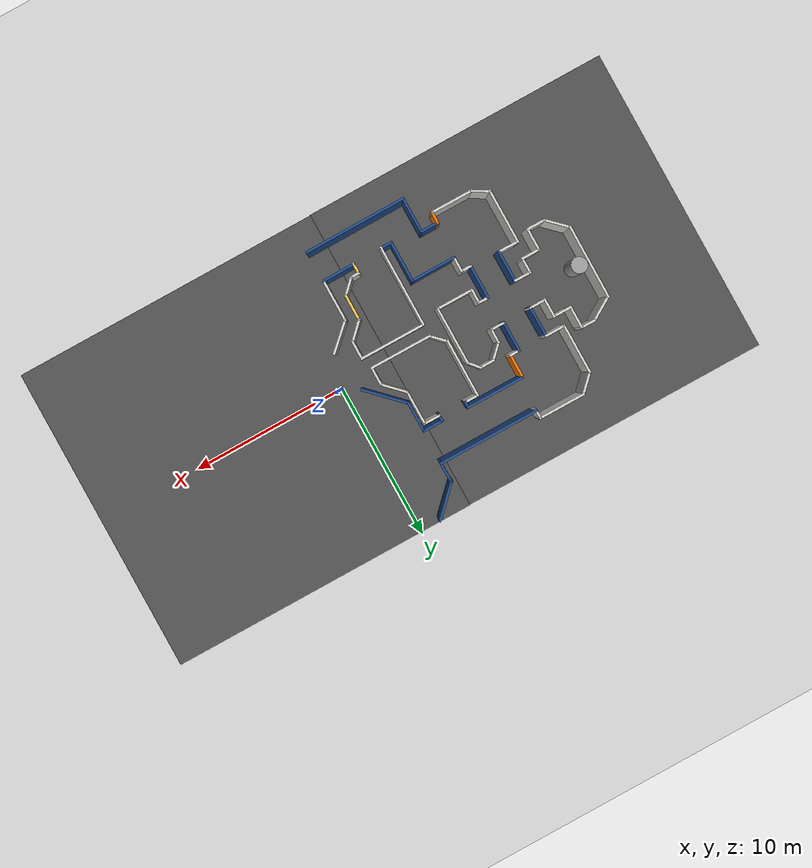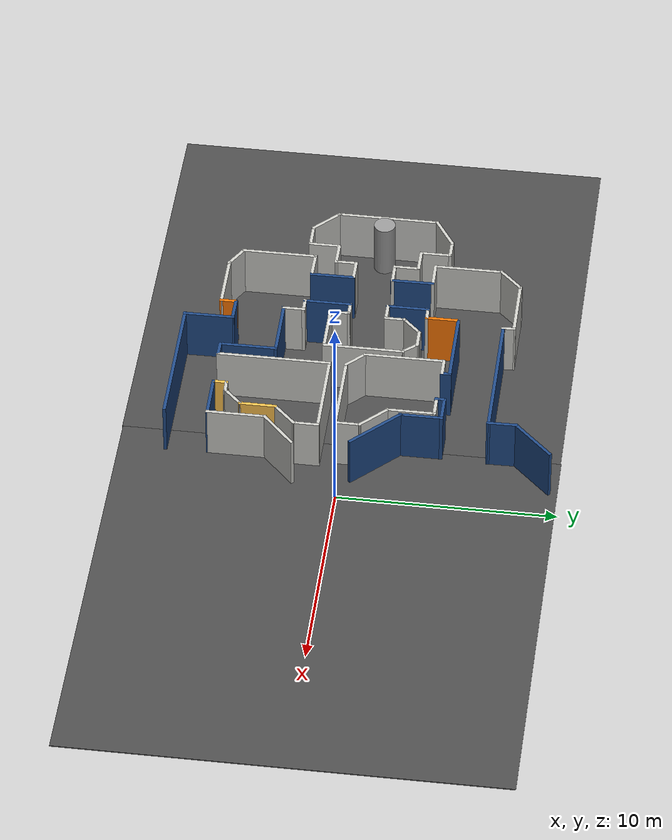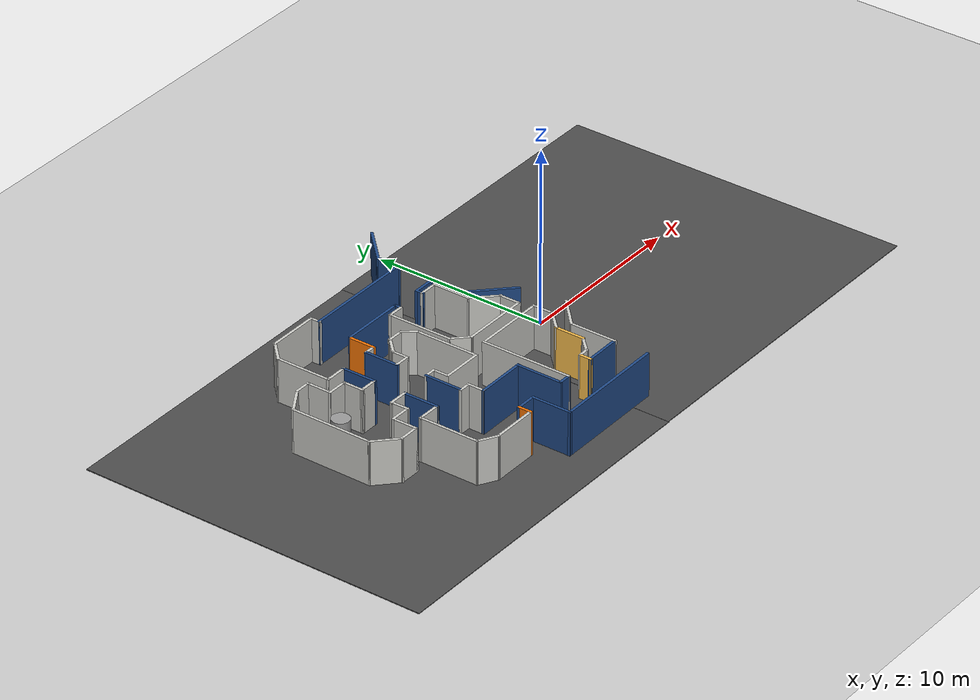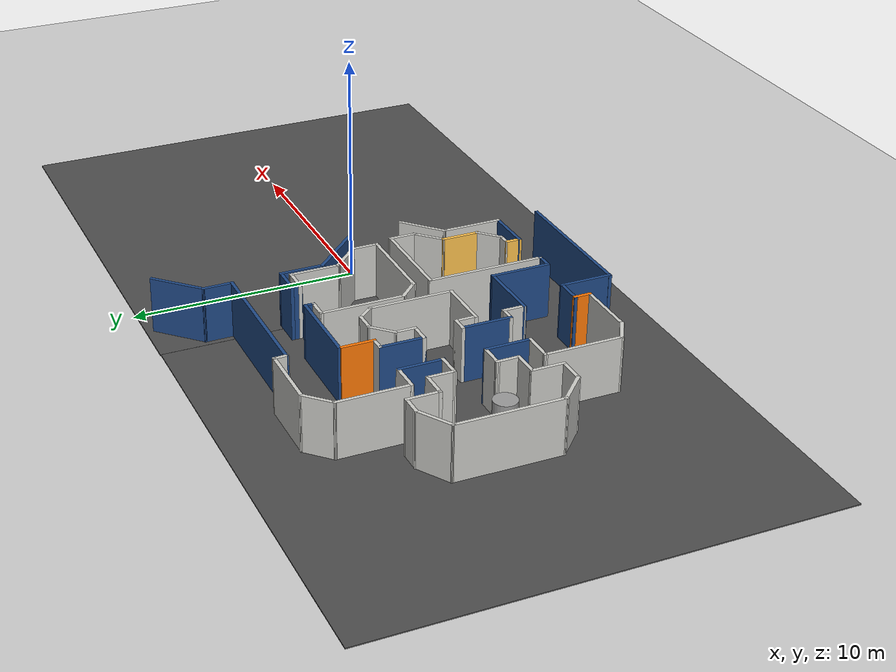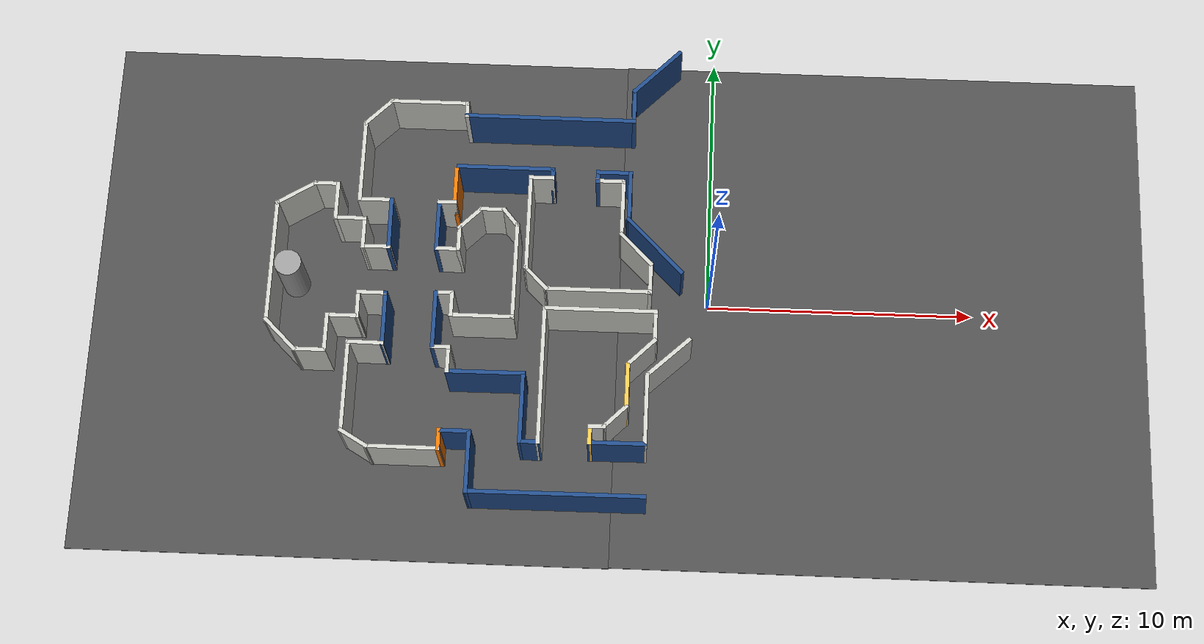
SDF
<sdf version="1.6">
 <world name="default">
  <model name="ground_plane">
   <static>1</static>
   <link name="link">
    <collision name="collision">
     <geometry><plane><normal>0 0 1</normal><size>100 100</size></plane></geometry>
     <surface><friction><ode><mu>100</mu><mu2>50</mu2></ode></friction></surface>
    </collision>
    <visual name="visual">
     <cast_shadows>0</cast_shadows>
     <geometry><plane><normal>0 0 1</normal><size>100 100</size></plane></geometry>
     <material>
      <script><uri>file://media/materials/scripts/gazebo.material</uri><name>Gazebo/Grey</name></script>
     </material>
    </visual>
   </link>
  </model>
  <model name="among_us_world">
   <pose>0.13322 -0.123112 0 0 -0 0</pose>
   <link name="Wall_101">
    <collision name="Wall_101_Collision">
     <geometry><box><size>3.75 0.15 2.5</size></box></geometry>
     <pose>0 0 1.25 0 -0 0</pose>
    </collision>
    <visual name="Wall_101_Visual">
     <pose>0 0 1.25 0 -0 0</pose>
     <geometry><box><size>3.75 0.15 2.5</size></box></geometry>
     <material>
      <script><uri>file://media/materials/scripts/gazebo.material</uri><name>Gazebo/CeilingTiled</name></script>
      <ambient>0.12549 0.290196 0.529412 1</ambient>
     </material>
     <meta><layer>0</layer></meta>
    </visual>
    <pose>-6.98451 2.43054 0 0 -0 -1.5708</pose>
   </link>
   <link name="Wall_103">
    <collision name="Wall_103_Collision">
     <geometry><box><size>1.25 0.15 2.5</size></box></geometry>
     <pose>0 0 1.25 0 -0 0</pose>
    </collision>
    <visual name="Wall_103_Visual">
     <pose>0 0 1.25 0 -0 0</pose>
     <geometry><box><size>1.25 0.15 2.5</size></box></geometry>
     <material>
      <script><uri>file://media/materials/scripts/gazebo.material</uri><name>Gazebo/CeilingTiled</name></script>
      <ambient>0.12549 0.290196 0.529412 1</ambient>
     </material>
     <meta><layer>0</layer></meta>
    </visual>
    <pose>-6.5956 0.241636 0 0 -0 -0.785398</pose>
   </link>
   <link name="Wall_104">
    <collision name="Wall_104_Collision">
     <geometry><box><size>4 0.15 2.5</size></box></geometry>
     <pose>0 0 1.25 0 -0 0</pose>
    </collision>
    <visual name="Wall_104_Visual">
     <pose>0 0 1.25 0 -0 0</pose>
     <geometry><box><size>4 0.15 2.5</size></box></geometry>
     <material>
      <script><uri>file://media/materials/scripts/gazebo.material</uri><name>Gazebo/CeilingTiled</name></script>
      <ambient>0.12549 0.290196 0.529412 1</ambient>
     </material>
     <meta><layer>0</layer></meta>
    </visual>
    <pose>-4.28169 -0.147272 0 0 -0 0</pose>
   </link>
   <link name="Wall_105">
    <collision name="Wall_105_Collision">
     <geometry><box><size>1.25 0.15 2.5</size></box></geometry>
     <pose>0 0 1.25 0 -0 0</pose>
    </collision>
    <visual name="Wall_105_Visual">
     <pose>0 0 1.25 0 -0 0</pose>
     <geometry><box><size>1.25 0.15 2.5</size></box></geometry>
     <material>
      <script><uri>file://media/materials/scripts/gazebo.material</uri><name>Gazebo/CeilingTiled</name></script>
      <ambient>0.12549 0.290196 0.529412 1</ambient>
     </material>
     <meta><layer>0</layer></meta>
    </visual>
    <pose>-2.35669 0.402728 0 0 -0 1.5708</pose>
   </link>
   <link name="Wall_106">
    <collision name="Wall_106_Collision">
     <geometry><box><size>1.75 0.15 2.5</size></box></geometry>
     <pose>0 0 1.25 0 -0 0</pose>
    </collision>
    <visual name="Wall_106_Visual">
     <pose>0 0 1.25 0 -0 0</pose>
     <geometry><box><size>1.75 0.15 2.5</size></box></geometry>
     <material>
      <script><uri>file://media/materials/scripts/gazebo.material</uri><name>Gazebo/CeilingTiled</name></script>
      <ambient>0.12549 0.290196 0.529412 1</ambient>
     </material>
     <meta><layer>0</layer></meta>
    </visual>
    <pose>-2.92238 1.51841 0 0 -0 2.35619</pose>
   </link>
   <link name="Wall_108">
    <collision name="Wall_108_Collision">
     <geometry><box><size>2.25 0.15 2.5</size></box></geometry>
     <pose>0 0 1.25 0 -0 0</pose>
    </collision>
    <visual name="Wall_108_Visual">
     <pose>0 0 1.25 0 -0 0</pose>
     <geometry><box><size>2.25 0.15 2.5</size></box></geometry>
     <material>
      <script><uri>file://media/materials/scripts/gazebo.material</uri><name>Gazebo/CeilingTiled</name></script>
      <ambient>0.12549 0.290196 0.529412 1</ambient>
     </material>
     <meta><layer>0</layer></meta>
    </visual>
    <pose>-3.48806 3.1341 0 0 -0 1.5708</pose>
   </link>
   <link name="Wall_109">
    <collision name="Wall_109_Collision">
     <geometry><box><size>1.12677 0.15 2.5</size></box></geometry>
     <pose>0 0 1.25 0 -0 0</pose>
    </collision>
    <visual name="Wall_109_Visual">
     <pose>0 0 1.25 0 -0 0</pose>
     <geometry><box><size>1.12677 0.15 2.5</size></box></geometry>
     <material>
      <script><uri>file://media/materials/scripts/gazebo.material</uri><name>Gazebo/CeilingTiled</name></script>
      <ambient>0.12549 0.290196 0.529412 1</ambient>
     </material>
     <meta><layer>0</layer></meta>
    </visual>
    <pose>-3.97634 4.1841 0 0 -0 3.14159</pose>
   </link>
   <link name="Wall_110">
    <collision name="Wall_110_Collision">
     <geometry><box><size>0.5 0.15 2.5</size></box></geometry>
     <pose>0 0 1.25 0 -0 0</pose>
    </collision>
    <visual name="Wall_110_Visual">
     <pose>0 0 1.25 0 -0 0</pose>
     <geometry><box><size>0.5 0.15 2.5</size></box></geometry>
     <material>
      <script><uri>file://media/materials/scripts/gazebo.material</uri><name>Gazebo/Grey</name></script>
      <ambient>0.12549 0.290196 0.529412 1</ambient>
     </material>
     <meta><layer>0</layer></meta>
    </visual>
    <pose>-4.46462 4.33852 0 0 -0 1.5708</pose>
   </link>
   <link name="Wall_111">
    <collision name="Wall_111_Collision">
     <geometry><box><size>1.37673 0.15 2.5</size></box></geometry>
     <pose>0 0 1.25 0 -0 0</pose>
    </collision>
    <visual name="Wall_111_Visual">
     <pose>0 0 1.25 0 -0 0</pose>
     <geometry><box><size>1.37673 0.15 2.5</size></box></geometry>
     <material>
      <script><uri>file://media/materials/scripts/gazebo.material</uri><name>Gazebo/Motorway</name></script>
      <ambient>0.12549 0.290196 0.529412 1</ambient>
     </material>
     <meta><layer>0</layer></meta>
    </visual>
    <pose>-3.85134 4.5341 0 0 -0 0</pose>
   </link>
   <link name="Wall_112">
    <collision name="Wall_112_Collision">
     <geometry><box><size>2 0.15 2.5</size></box></geometry>
     <pose>0 0 1.25 0 -0 0</pose>
    </collision>
    <visual name="Wall_112_Visual">
     <pose>0 0 1.25 0 -0 0</pose>
     <geometry><box><size>2 0.15 2.5</size></box></geometry>
     <material>
      <script><uri>file://media/materials/scripts/gazebo.material</uri><name>Gazebo/Motorway</name></script>
      <ambient>0.12549 0.290196 0.529412 1</ambient>
     </material>
     <meta><layer>0</layer></meta>
    </visual>
    <pose>-3.23806 3.6091 0 0 -0 -1.5708</pose>
   </link>
   <link name="Wall_114">
    <collision name="Wall_114_Collision">
     <geometry><box><size>3 0.15 2.5</size></box></geometry>
     <pose>0 0 1.25 0 -0 0</pose>
    </collision>
    <visual name="Wall_114_Visual">
     <pose>0 0 1.25 0 -0 0</pose>
     <geometry><box><size>3 0.15 2.5</size></box></geometry>
     <material>
      <script><uri>file://media/materials/scripts/gazebo.material</uri><name>Gazebo/Motorway</name></script>
      <ambient>0.12549 0.290196 0.529412 1</ambient>
     </material>
     <meta><layer>0</layer></meta>
    </visual>
    <pose>-2.23043 1.67647 0 0 -0 -0.785398</pose>
   </link>
   <link name="Wall_145">
    <collision name="Wall_145_Collision">
     <geometry><box><size>5.25 0.15 2.5</size></box></geometry>
     <pose>0 0 1.25 0 -0 0</pose>
    </collision>
    <visual name="Wall_145_Visual">
     <pose>0 0 1.25 0 -0 0</pose>
     <geometry><box><size>5.25 0.15 2.5</size></box></geometry>
     <material>
      <script><uri>file://media/materials/scripts/gazebo.material</uri><name>Gazebo/CeilingTiled</name></script>
      <ambient>1 0.764706 0.305882 1</ambient>
     </material>
     <meta><layer>0</layer></meta>
    </visual>
    <pose>-6.21277 -3.45528 0 0 -0 1.5708</pose>
   </link>
   <link name="Wall_146">
    <collision name="Wall_146_Collision">
     <geometry><box><size>4.25 0.15 2.5</size></box></geometry>
     <pose>0 0 1.25 0 -0 0</pose>
    </collision>
    <visual name="Wall_146_Visual">
     <pose>0 0 1.25 0 -0 0</pose>
     <geometry><box><size>4.25 0.15 2.5</size></box></geometry>
     <material>
      <script><uri>file://media/materials/scripts/gazebo.material</uri><name>Gazebo/CeilingTiled</name></script>
      <ambient>1 0.764706 0.305882 1</ambient>
     </material>
     <meta><layer>0</layer></meta>
    </visual>
    <pose>-4.16277 -0.905283 0 0 -0 0</pose>
   </link>
   <link name="Wall_147">
    <collision name="Wall_147_Collision">
     <geometry><box><size>1.25 0.15 2.5</size></box></geometry>
     <pose>0 0 1.25 0 -0 0</pose>
    </collision>
    <visual name="Wall_147_Visual">
     <pose>0 0 1.25 0 -0 0</pose>
     <geometry><box><size>1.25 0.15 2.5</size></box></geometry>
     <material>
      <script><uri>file://media/materials/scripts/gazebo.material</uri><name>Gazebo/CeilingTiled</name></script>
      <ambient>1 0.764706 0.305882 1</ambient>
     </material>
     <meta><layer>0</layer></meta>
    </visual>
    <pose>-2.11277 -1.45528 0 0 -0 -1.5708</pose>
   </link>
   <link name="Wall_148">
    <collision name="Wall_148_Collision">
     <geometry><box><size>1.5 0.15 2.5</size></box></geometry>
     <pose>0 0 1.25 0 -0 0</pose>
    </collision>
    <visual name="Wall_148_Visual">
     <pose>0 0 1.25 0 -0 0</pose>
     <geometry><box><size>1.5 0.15 2.5</size></box></geometry>
     <material>
      <script><uri>file://media/materials/scripts/gazebo.material</uri><name>Gazebo/CeilingTiled</name></script>
      <ambient>1 0.764706 0.305882 1</ambient>
     </material>
     <meta><layer>0</layer></meta>
    </visual>
    <pose>-2.59027 -2.48228 0 0 -0 -2.35672</pose>
   </link>
   <link name="Wall_149">
    <collision name="Wall_149_Collision">
     <geometry><box><size>1.75 0.15 2.5</size></box></geometry>
     <pose>0 0 1.25 0 -0 0</pose>
    </collision>
    <visual name="Wall_149_Visual">
     <pose>0 0 1.25 0 -0 0</pose>
     <geometry><box><size>1.75 0.15 2.5</size></box></geometry>
     <material>
      <script><uri>file://media/materials/scripts/gazebo.material</uri><name>Gazebo/Grey</name></script>
      <ambient>1 0.764706 0.305882 1</ambient>
     </material>
     <meta><layer>0</layer></meta>
    </visual>
    <pose>-3.06777 -3.75928 0 0 -0 -1.5708</pose>
   </link>
   <link name="Wall_150">
    <collision name="Wall_150_Collision">
     <geometry><box><size>1.25 0.15 2.5</size></box></geometry>
     <pose>0 0 1.25 0 -0 0</pose>
    </collision>
    <visual name="Wall_150_Visual">
     <pose>0 0 1.25 0 -0 0</pose>
     <geometry><box><size>1.25 0.15 2.5</size></box></geometry>
     <material>
      <script><uri>file://media/materials/scripts/gazebo.material</uri><name>Gazebo/CeilingTiled</name></script>
      <ambient>1 0.764706 0.305882 1</ambient>
     </material>
     <meta><layer>0</layer></meta>
    </visual>
    <pose>-3.45677 -4.94828 0 0 -0 -2.35619</pose>
   </link>
   <link name="Wall_153">
    <collision name="Wall_153_Collision">
     <geometry><box><size>0.660076 0.15 2.5</size></box></geometry>
     <pose>0 0 1.25 0 -0 0</pose>
    </collision>
    <visual name="Wall_153_Visual">
     <pose>0 0 1.25 0 -0 0</pose>
     <geometry><box><size>0.660076 0.15 2.5</size></box></geometry>
     <material>
      <script><uri>file://media/materials/scripts/gazebo.material</uri><name>Gazebo/CeilingTiled</name></script>
      <ambient>1 0.764706 0.305882 1</ambient>
     </material>
     <meta><layer>0</layer></meta>
    </visual>
    <pose>-4.10077 -5.34628 0 0 -0 -3.10631</pose>
   </link>
   <link name="Wall_154">
    <collision name="Wall_154_Collision">
     <geometry><box><size>0.75 0.15 2.5</size></box></geometry>
     <pose>0 0 1.25 0 -0 0</pose>
    </collision>
    <visual name="Wall_154_Visual">
     <pose>0 0 1.25 0 -0 0</pose>
     <geometry><box><size>0.75 0.15 2.5</size></box></geometry>
     <material>
      <script><uri>file://media/materials/scripts/gazebo.material</uri><name>Gazebo/Grey</name></script>
      <ambient>1 0.764706 0.305882 1</ambient>
     </material>
     <meta><layer>0</layer></meta>
    </visual>
    <pose>-4.35577 -5.65528 0 0 -0 -1.5708</pose>
   </link>
   <link name="Wall_155">
    <collision name="Wall_155_Collision">
     <geometry><box><size>2.16008 0.15 2.5</size></box></geometry>
     <pose>0 0 1.25 0 -0 0</pose>
    </collision>
    <visual name="Wall_155_Visual">
     <pose>0 0 1.25 0 -0 0</pose>
     <geometry><box><size>2.16008 0.15 2.5</size></box></geometry>
     <material>
      <script><uri>file://media/materials/scripts/gazebo.material</uri><name>Gazebo/Motorway</name></script>
      <ambient>0.12549 0.290196 0.529412 1</ambient>
     </material>
     <meta><layer>0</layer></meta>
    </visual>
    <pose>-3.35065 -5.9463 0 0 -0 0.008937</pose>
   </link>
   <link name="Wall_156">
    <collision name="Wall_156_Collision">
     <geometry><box><size>2.75 0.15 2.5</size></box></geometry>
     <pose>0 0 1.25 0 -0 0</pose>
    </collision>
    <visual name="Wall_156_Visual">
     <pose>0 0 1.25 0 -0 0</pose>
     <geometry><box><size>2.75 0.15 2.5</size></box></geometry>
     <material>
      <script><uri>file://media/materials/scripts/gazebo.material</uri><name>Gazebo/CeilingTiled</name></script>
      <ambient>0.333333 0.341176 0.32549 1</ambient>
     </material>
     <meta><layer>0</layer></meta>
    </visual>
    <pose>-2.34553 -4.63732 0 0 -0 1.5708</pose>
   </link>
   <link name="Wall_160">
    <collision name="Wall_160_Collision">
     <geometry><box><size>0.797757 0.15 2.5</size></box></geometry>
     <pose>0 0 1.25 0 -0 0</pose>
    </collision>
    <visual name="Wall_160_Visual">
     <pose>0 0 1.25 0 -0 0</pose>
     <geometry><box><size>0.797757 0.15 2.5</size></box></geometry>
     <material>
      <script><uri>file://media/materials/scripts/gazebo.material</uri><name>Gazebo/Motorway</name></script>
      <ambient>0.12549 0.290196 0.529412 1</ambient>
     </material>
     <meta><layer>0</layer></meta>
    </visual>
    <pose>-6.53682 -6.00509 0 0 -0 3.14101</pose>
   </link>
   <link name="Wall_161">
    <collision name="Wall_161_Collision">
     <geometry><box><size>2.70224 0.15 2.5</size></box></geometry>
     <pose>0 0 1.25 0 -0 0</pose>
    </collision>
    <visual name="Wall_161_Visual">
     <pose>0 0 1.25 0 -0 0</pose>
     <geometry><box><size>2.70224 0.15 2.5</size></box></geometry>
     <material>
      <script><uri>file://media/materials/scripts/gazebo.material</uri><name>Gazebo/Motorway</name></script>
      <ambient>0.12549 0.290196 0.529412 1</ambient>
     </material>
     <meta><layer>0</layer></meta>
    </visual>
    <pose>-6.87644 -4.72879 0 0 -0 1.5708</pose>
   </link>
   <link name="Wall_162">
    <collision name="Wall_162_Collision">
     <geometry><box><size>2.95229 0.15 2.5</size></box></geometry>
     <pose>0 0 1.25 0 -0 0</pose>
    </collision>
    <visual name="Wall_162_Visual">
     <pose>0 0 1.25 0 -0 0</pose>
     <geometry><box><size>2.95229 0.15 2.5</size></box></geometry>
     <material>
      <script><uri>file://media/materials/scripts/gazebo.material</uri><name>Gazebo/Motorway</name></script>
      <ambient>0.12549 0.290196 0.529412 1</ambient>
     </material>
     <meta><layer>0</layer></meta>
    </visual>
    <pose>-8.262 -3.46044 0 0 -0 -3.13604</pose>
   </link>
   <link name="Wall_163">
    <collision name="Wall_163_Collision">
     <geometry><box><size>1.04776 0.15 2.5</size></box></geometry>
     <pose>0 0 1.25 0 -0 0</pose>
    </collision>
    <visual name="Wall_163_Visual">
     <pose>0 0 1.25 0 -0 0</pose>
     <geometry><box><size>1.04776 0.15 2.5</size></box></geometry>
     <material>
      <script><uri>file://media/materials/scripts/gazebo.material</uri><name>Gazebo/CeilingTiled</name></script>
      <ambient>0.996078 0.47451 0.0196078 1</ambient>
     </material>
     <meta><layer>0</layer></meta>
    </visual>
    <pose>-9.66312 -3.00378 0 0 -0 1.5708</pose>
   </link>
   <link name="Wall_164">
    <collision name="Wall_164_Collision">
     <geometry><box><size>0.75 0.15 2.5</size></box></geometry>
     <pose>0 0 1.25 0 -0 0</pose>
    </collision>
    <visual name="Wall_164_Visual">
     <pose>0 0 1.25 0 -0 0</pose>
     <geometry><box><size>0.75 0.15 2.5</size></box></geometry>
     <material>
      <script><uri>file://media/materials/scripts/gazebo.material</uri><name>Gazebo/CeilingTiled</name></script>
      <ambient>0.996078 0.47451 0.0196078 1</ambient>
     </material>
     <meta><layer>0</layer></meta>
    </visual>
    <pose>-9.96312 -2.55491 0 0 -0 3.14159</pose>
   </link>
   <link name="Wall_165">
    <collision name="Wall_165_Collision">
     <geometry><box><size>2.25 0.15 2.5</size></box></geometry>
     <pose>0 0 1.25 0 -0 0</pose>
    </collision>
    <visual name="Wall_165_Visual">
     <pose>0 0 1.25 0 -0 0</pose>
     <geometry><box><size>2.25 0.15 2.5</size></box></geometry>
     <material>
      <script><uri>file://media/materials/scripts/gazebo.material</uri><name>Gazebo/Motorway</name></script>
      <ambient>0.12549 0.290196 0.529412 1</ambient>
     </material>
     <meta><layer>0</layer></meta>
    </visual>
    <pose>-10.2631 -1.50491 0 0 -0 1.5708</pose>
   </link>
   <link name="Wall_166">
    <collision name="Wall_166_Collision">
     <geometry><box><size>0.75 0.15 2.5</size></box></geometry>
     <pose>0 0 1.25 0 -0 0</pose>
    </collision>
    <visual name="Wall_166_Visual">
     <pose>0 0 1.25 0 -0 0</pose>
     <geometry><box><size>0.75 0.15 2.5</size></box></geometry>
     <material>
      <script><uri>file://media/materials/scripts/gazebo.material</uri><name>Gazebo/CeilingTiled</name></script>
      <ambient>0.435294 0.796078 0.67451 1</ambient>
     </material>
     <meta><layer>0</layer></meta>
    </visual>
    <pose>-9.96312 -0.454906 0 0 -0 0</pose>
   </link>
   <link name="Wall_167">
    <collision name="Wall_167_Collision">
     <geometry><box><size>1 0.15 2.5</size></box></geometry>
     <pose>0 0 1.25 0 -0 0</pose>
    </collision>
    <visual name="Wall_167_Visual">
     <pose>0 0 1.25 0 -0 0</pose>
     <geometry><box><size>1 0.15 2.5</size></box></geometry>
     <material>
      <script><uri>file://media/materials/scripts/gazebo.material</uri><name>Gazebo/CeilingTiled</name></script>
      <ambient>0.435294 0.796078 0.67451 1</ambient>
     </material>
     <meta><layer>0</layer></meta>
    </visual>
    <pose>-9.66312 -0.879906 0 0 -0 -1.5708</pose>
   </link>
   <link name="Wall_168">
    <collision name="Wall_168_Collision">
     <geometry><box><size>2.40666 0.15 2.5</size></box></geometry>
     <pose>0 0 1.25 0 -0 0</pose>
    </collision>
    <visual name="Wall_168_Visual">
     <pose>0 0 1.25 0 -0 0</pose>
     <geometry><box><size>2.40666 0.15 2.5</size></box></geometry>
     <material>
      <script><uri>file://media/materials/scripts/gazebo.material</uri><name>Gazebo/CeilingTiled</name></script>
      <ambient>0.435294 0.796078 0.67451 1</ambient>
     </material>
     <meta><layer>0</layer></meta>
    </visual>
    <pose>-8.53479 -1.30491 0 0 -0 0</pose>
   </link>
   <link name="Wall_169">
    <collision name="Wall_169_Collision">
     <geometry><box><size>3.75 0.15 2.5</size></box></geometry>
     <pose>0 0 1.25 0 -0 0</pose>
    </collision>
    <visual name="Wall_169_Visual">
     <pose>0 0 1.25 0 -0 0</pose>
     <geometry><box><size>3.75 0.15 2.5</size></box></geometry>
     <material>
      <script><uri>file://media/materials/scripts/gazebo.material</uri><name>Gazebo/CeilingTiled</name></script>
      <ambient>0.435294 0.796078 0.67451 1</ambient>
     </material>
     <meta><layer>0</layer></meta>
    </visual>
    <pose>-7.39091 0.495094 0 0 -0 1.5708</pose>
   </link>
   <link name="Wall_170">
    <collision name="Wall_170_Collision">
     <geometry><box><size>0.93677 0.15 2.5</size></box></geometry>
     <pose>0 0 1.25 0 -0 0</pose>
    </collision>
    <visual name="Wall_170_Visual">
     <pose>0 0 1.25 0 -0 0</pose>
     <geometry><box><size>0.93677 0.15 2.5</size></box></geometry>
     <material>
      <script><uri>file://media/materials/scripts/gazebo.material</uri><name>Gazebo/CeilingTiled</name></script>
      <ambient>0.435294 0.796078 0.67451 1</ambient>
     </material>
     <meta><layer>0</layer></meta>
    </visual>
    <pose>-7.66031 2.59561 0 0 -0 2.2722</pose>
   </link>
   <link name="Wall_171">
    <collision name="Wall_171_Collision">
     <geometry><box><size>1 0.15 2.5</size></box></geometry>
     <pose>0 0 1.25 0 -0 0</pose>
    </collision>
    <visual name="Wall_171_Visual">
     <pose>0 0 1.25 0 -0 0</pose>
     <geometry><box><size>1 0.15 2.5</size></box></geometry>
     <material>
      <script><uri>file://media/materials/scripts/gazebo.material</uri><name>Gazebo/CeilingTiled</name></script>
      <ambient>0.435294 0.796078 0.67451 1</ambient>
     </material>
     <meta><layer>0</layer></meta>
    </visual>
    <pose>-8.33916 2.89614 0 0 -0 3.14159</pose>
   </link>
   <link name="Wall_172">
    <collision name="Wall_172_Collision">
     <geometry><box><size>1.25 0.15 2.5</size></box></geometry>
     <pose>0 0 1.25 0 -0 0</pose>
    </collision>
    <visual name="Wall_172_Visual">
     <pose>0 0 1.25 0 -0 0</pose>
     <geometry><box><size>1.25 0.15 2.5</size></box></geometry>
     <material>
      <script><uri>file://media/materials/scripts/gazebo.material</uri><name>Gazebo/CeilingTiled</name></script>
      <ambient>0.435294 0.796078 0.67451 1</ambient>
     </material>
     <meta><layer>0</layer></meta>
    </visual>
    <pose>-9.15307 2.50723 0 0 -0 -2.35619</pose>
   </link>
   <link name="Wall_173">
    <collision name="Wall_173_Collision">
     <geometry><box><size>1 0.15 2.5</size></box></geometry>
     <pose>0 0 1.25 0 -0 0</pose>
    </collision>
    <visual name="Wall_173_Visual">
     <pose>0 0 1.25 0 -0 0</pose>
     <geometry><box><size>1 0.15 2.5</size></box></geometry>
     <material>
      <script><uri>file://media/materials/scripts/gazebo.material</uri><name>Gazebo/CeilingTiled</name></script>
      <ambient>0.435294 0.796078 0.67451 1</ambient>
     </material>
     <meta><layer>0</layer></meta>
    </visual>
    <pose>-9.54198 1.69332 0 0 -0 -1.5708</pose>
   </link>
   <link name="Wall_174">
    <collision name="Wall_174_Collision">
     <geometry><box><size>0.969112 0.15 2.5</size></box></geometry>
     <pose>0 0 1.25 0 -0 0</pose>
    </collision>
    <visual name="Wall_174_Visual">
     <pose>0 0 1.25 0 -0 0</pose>
     <geometry><box><size>0.969112 0.15 2.5</size></box></geometry>
     <material>
      <script><uri>file://media/materials/scripts/gazebo.material</uri><name>Gazebo/CeilingTiled</name></script>
      <ambient>0.435294 0.796078 0.67451 1</ambient>
     </material>
     <meta><layer>0</layer></meta>
    </visual>
    <pose>-9.95154 1.26832 0 0 -0 -3.14159</pose>
   </link>
   <link name="Wall_175">
    <collision name="Wall_175_Collision">
     <geometry><box><size>2 0.15 2.5</size></box></geometry>
     <pose>0 0 1.25 0 -0 0</pose>
    </collision>
    <visual name="Wall_175_Visual">
     <pose>0 0 1.25 0 -0 0</pose>
     <geometry><box><size>2 0.15 2.5</size></box></geometry>
     <material>
      <script><uri>file://media/materials/scripts/gazebo.material</uri><name>Gazebo/Motorway</name></script>
      <ambient>0.12549 0.290196 0.529412 1</ambient>
     </material>
     <meta><layer>0</layer></meta>
    </visual>
    <pose>-10.3611 2.17994 0 0 -0 1.5708</pose>
   </link>
   <link name="Wall_176">
    <collision name="Wall_176_Collision">
     <geometry><box><size>0.719112 0.15 2.5</size></box></geometry>
     <pose>0 0 1.25 0 -0 0</pose>
    </collision>
    <visual name="Wall_176_Visual">
     <pose>0 0 1.25 0 -0 0</pose>
     <geometry><box><size>0.719112 0.15 2.5</size></box></geometry>
     <material>
      <script><uri>file://media/materials/scripts/gazebo.material</uri><name>Gazebo/CeilingTiled</name></script>
      <ambient>0.996078 0.47451 0.0196078 1</ambient>
     </material>
     <meta><layer>0</layer></meta>
    </visual>
    <pose>-10.0765 3.11832 0 0 -0 0</pose>
   </link>
   <link name="Wall_177">
    <collision name="Wall_177_Collision">
     <geometry><box><size>1.5 0.15 2.5</size></box></geometry>
     <pose>0 0 1.25 0 -0 0</pose>
    </collision>
    <visual name="Wall_177_Visual">
     <pose>0 0 1.25 0 -0 0</pose>
     <geometry><box><size>1.5 0.15 2.5</size></box></geometry>
     <material>
      <script><uri>file://media/materials/scripts/gazebo.material</uri><name>Gazebo/Grey</name></script>
      <ambient>0.996078 0.47451 0.0196078 1</ambient>
     </material>
     <meta><layer>0</layer></meta>
    </visual>
    <pose>-9.79198 3.79332 0 0 -0 1.5708</pose>
   </link>
   <link name="Wall_206">
    <collision name="Wall_206_Collision">
     <geometry><box><size>2.20149 0.15 2.5</size></box></geometry>
     <pose>0 0 1.25 0 -0 0</pose>
    </collision>
    <visual name="Wall_206_Visual">
     <pose>0 0 1.25 0 -0 0</pose>
     <geometry><box><size>2.20149 0.15 2.5</size></box></geometry>
     <material>
      <script><uri>file://media/materials/scripts/gazebo.material</uri><name>Gazebo/CeilingTiled</name></script>
      <ambient>0.333333 0.341176 0.32549 1</ambient>
     </material>
     <meta><layer>0</layer></meta>
    </visual>
    <pose>-1.59629 -2.63675 0 0 -0 0.751837</pose>
   </link>
   <link name="Wall_208">
    <collision name="Wall_208_Collision">
     <geometry><box><size>1.25 0.15 2.5</size></box></geometry>
     <pose>0 0 1.25 0 -0 0</pose>
    </collision>
    <visual name="Wall_208_Visual">
     <pose>0 0 1.25 0 -0 0</pose>
     <geometry><box><size>1.25 0.15 2.5</size></box></geometry>
     <material>
      <script><uri>file://media/materials/scripts/gazebo.material</uri><name>Gazebo/CeilingTiled</name></script>
      <ambient>0.458824 0.313726 0.482353 1</ambient>
     </material>
     <meta><layer>0</layer></meta>
    </visual>
    <pose>-13.1077 1.80265 0 0 -0 -1.57068</pose>
   </link>
   <link name="Wall_209">
    <collision name="Wall_209_Collision">
     <geometry><box><size>1.11978 0.15 2.5</size></box></geometry>
     <pose>0 0 1.25 0 -0 0</pose>
    </collision>
    <visual name="Wall_209_Visual">
     <pose>0 0 1.25 0 -0 0</pose>
     <geometry><box><size>1.11978 0.15 2.5</size></box></geometry>
     <material>
      <script><uri>file://media/materials/scripts/gazebo.material</uri><name>Gazebo/CeilingTiled</name></script>
      <ambient>0.458824 0.313726 0.482353 1</ambient>
     </material>
     <meta><layer>0</layer></meta>
    </visual>
    <pose>-12.6228 1.25736 0 0 -0 0.009865</pose>
   </link>
   <link name="Wall_29">
    <collision name="Wall_29_Collision">
     <geometry><box><size>2.5 0.15 2.5</size></box></geometry>
     <pose>0 0 1.25 0 -0 0</pose>
    </collision>
    <visual name="Wall_29_Visual">
     <pose>0 0 1.25 0 -0 0</pose>
     <geometry><box><size>2.5 0.15 2.5</size></box></geometry>
     <material>
      <script><uri>file://media/materials/scripts/gazebo.material</uri><name>Gazebo/Motorway</name></script>
      <ambient>0.12549 0.290196 0.529412 1</ambient>
     </material>
     <meta><layer>0</layer></meta>
    </visual>
    <pose>-2.37241 8.73794 0 0 -0 -2.35611</pose>
   </link>
   <link name="Wall_30">
    <collision name="Wall_30_Collision">
     <geometry><box><size>1.4062 0.15 2.5</size></box></geometry>
     <pose>0 0 1.25 0 -0 0</pose>
    </collision>
    <visual name="Wall_30_Visual">
     <pose>0 0 1.25 0 -0 0</pose>
     <geometry><box><size>1.4062 0.15 2.5</size></box></geometry>
     <material>
      <script><uri>file://media/materials/scripts/gazebo.material</uri><name>Gazebo/Motorway</name></script>
      <ambient>0.12549 0.290196 0.529412 1</ambient>
     </material>
     <meta><layer>0</layer></meta>
    </visual>
    <pose>-3.19527 7.27912 0 0 -0 -1.55841</pose>
   </link>
   <link name="Wall_31">
    <collision name="Wall_31_Collision">
     <geometry><box><size>6.5 0.15 2.5</size></box></geometry>
     <pose>0 0 1.25 0 -0 0</pose>
    </collision>
    <visual name="Wall_31_Visual">
     <pose>0 0 1.25 0 -0 0</pose>
     <geometry><box><size>6.5 0.15 2.5</size></box></geometry>
     <material>
      <script><uri>file://media/materials/scripts/gazebo.material</uri><name>Gazebo/Motorway</name></script>
      <ambient>0.12549 0.290196 0.529412 1</ambient>
     </material>
     <meta><layer>0</layer></meta>
    </visual>
    <pose>-6.36249 6.66662 0 0 -0 3.14159</pose>
   </link>
   <link name="Wall_32">
    <collision name="Wall_32_Collision">
     <geometry><box><size>0.656345 0.15 2.5</size></box></geometry>
     <pose>0 0 1.25 0 -0 0</pose>
    </collision>
    <visual name="Wall_32_Visual">
     <pose>0 0 1.25 0 -0 0</pose>
     <geometry><box><size>0.656345 0.15 2.5</size></box></geometry>
     <material>
      <script><uri>file://media/materials/scripts/gazebo.material</uri><name>Gazebo/CeilingTiled</name></script>
      <ambient>0.996078 0.47451 0.0196078 1</ambient>
     </material>
     <meta><layer>0</layer></meta>
    </visual>
    <pose>-9.54527 6.90412 0 0 -0 1.60153</pose>
   </link>
   <link name="Wall_33">
    <collision name="Wall_33_Collision">
     <geometry><box><size>3 0.15 2.5</size></box></geometry>
     <pose>0 0 1.25 0 -0 0</pose>
    </collision>
    <visual name="Wall_33_Visual">
     <pose>0 0 1.25 0 -0 0</pose>
     <geometry><box><size>3 0.15 2.5</size></box></geometry>
     <material>
      <script><uri>file://media/materials/scripts/gazebo.material</uri><name>Gazebo/CeilingTiled</name></script>
      <ambient>0.996078 0.47451 0.0196078 1</ambient>
     </material>
     <meta><layer>0</layer></meta>
    </visual>
    <pose>-10.978 7.15717 0 0 -0 3.14159</pose>
   </link>
   <link name="Wall_34">
    <collision name="Wall_34_Collision">
     <geometry><box><size>1.5 0.15 2.5</size></box></geometry>
     <pose>0 0 1.25 0 -0 0</pose>
    </collision>
    <visual name="Wall_34_Visual">
     <pose>0 0 1.25 0 -0 0</pose>
     <geometry><box><size>1.5 0.15 2.5</size></box></geometry>
     <material>
      <script><uri>file://media/materials/scripts/gazebo.material</uri><name>Gazebo/CeilingTiled</name></script>
      <ambient>0.996078 0.47451 0.0196078 1</ambient>
     </material>
     <meta><layer>0</layer></meta>
    </visual>
    <pose>-12.8803 6.67987 0 0 -0 -2.35619</pose>
   </link>
   <link name="Wall_35">
    <collision name="Wall_35_Collision">
     <geometry><box><size>3.21889 0.15 2.5</size></box></geometry>
     <pose>0 0 1.25 0 -0 0</pose>
    </collision>
    <visual name="Wall_35_Visual">
     <pose>0 0 1.25 0 -0 0</pose>
     <geometry><box><size>3.21889 0.15 2.5</size></box></geometry>
     <material>
      <script><uri>file://media/materials/scripts/gazebo.material</uri><name>Gazebo/CeilingTiled</name></script>
      <ambient>0.996078 0.47451 0.0196078 1</ambient>
     </material>
     <meta><layer>0</layer></meta>
    </visual>
    <pose>-13.3576 4.66813 0 0 -0 -1.5708</pose>
   </link>
   <link name="Wall_36">
    <collision name="Wall_36_Collision">
     <geometry><box><size>1.35468 0.15 2.5</size></box></geometry>
     <pose>0 0 1.25 0 -0 0</pose>
    </collision>
    <visual name="Wall_36_Visual">
     <pose>0 0 1.25 0 -0 0</pose>
     <geometry><box><size>1.35468 0.15 2.5</size></box></geometry>
     <material>
      <script><uri>file://media/materials/scripts/gazebo.material</uri><name>Gazebo/CeilingTiled</name></script>
      <ambient>0.996078 0.47451 0.0196078 1</ambient>
     </material>
     <meta><layer>0</layer></meta>
    </visual>
    <pose>-12.7556 3.12401 0 0 -0 0.009756</pose>
   </link>
   <link name="Wall_37">
    <collision name="Wall_37_Collision">
     <geometry><box><size>2.0178 0.15 2.5</size></box></geometry>
     <pose>0 0 1.25 0 -0 0</pose>
    </collision>
    <visual name="Wall_37_Visual">
     <pose>0 0 1.25 0 -0 0</pose>
     <geometry><box><size>2.0178 0.15 2.5</size></box></geometry>
     <material>
      <script><uri>file://media/materials/scripts/gazebo.material</uri><name>Gazebo/Motorway</name></script>
      <ambient>0.12549 0.290196 0.529412 1</ambient>
     </material>
     <meta><layer>0</layer></meta>
    </visual>
    <pose>-12.1457 2.18046 0 0 -0 -1.56247</pose>
   </link>
   <link name="Wall_40">
    <collision name="Wall_40_Collision">
     <geometry><box><size>1.25 0.15 2.5</size></box></geometry>
     <pose>0 0 1.25 0 -0 0</pose>
    </collision>
    <visual name="Wall_40_Visual">
     <pose>0 0 1.25 0 -0 0</pose>
     <geometry><box><size>1.25 0.15 2.5</size></box></geometry>
     <material>
      <script><uri>file://media/materials/scripts/gazebo.material</uri><name>Gazebo/CeilingTiled</name></script>
      <ambient>0.458824 0.313726 0.482353 1</ambient>
     </material>
     <meta><layer>0</layer></meta>
    </visual>
    <pose>-13.6578 2.35272 0 0 -0 3.14159</pose>
   </link>
   <link name="Wall_43">
    <collision name="Wall_43_Collision">
     <geometry><box><size>1.5 0.15 2.5</size></box></geometry>
     <pose>0 0 1.25 0 -0 0</pose>
    </collision>
    <visual name="Wall_43_Visual">
     <pose>0 0 1.25 0 -0 0</pose>
     <geometry><box><size>1.5 0.15 2.5</size></box></geometry>
     <material>
      <script><uri>file://media/materials/scripts/gazebo.material</uri><name>Gazebo/CeilingTiled</name></script>
      <ambient>0.458824 0.313726 0.482353 1</ambient>
     </material>
     <meta><layer>0</layer></meta>
    </visual>
    <pose>-14.2078 3.02772 0 0 -0 1.5708</pose>
   </link>
   <link name="Wall_44">
    <collision name="Wall_44_Collision">
     <geometry><box><size>1 0.15 2.5</size></box></geometry>
     <pose>0 0 1.25 0 -0 0</pose>
    </collision>
    <visual name="Wall_44_Visual">
     <pose>0 0 1.25 0 -0 0</pose>
     <geometry><box><size>1 0.15 2.5</size></box></geometry>
     <material>
      <script><uri>file://media/materials/scripts/gazebo.material</uri><name>Gazebo/CeilingTiled</name></script>
      <ambient>0.458824 0.313726 0.482353 1</ambient>
     </material>
     <meta><layer>0</layer></meta>
    </visual>
    <pose>-14.6328 3.70272 0 0 -0 3.14159</pose>
   </link>
   <link name="Wall_45">
    <collision name="Wall_45_Collision">
     <geometry><box><size>1.76072 0.15 2.5</size></box></geometry>
     <pose>0 0 1.25 0 -0 0</pose>
    </collision>
    <visual name="Wall_45_Visual">
     <pose>0 0 1.25 0 -0 0</pose>
     <geometry><box><size>1.76072 0.15 2.5</size></box></geometry>
     <material>
      <script><uri>file://media/materials/scripts/gazebo.material</uri><name>Gazebo/CeilingTiled</name></script>
      <ambient>0.360784 0.207843 0.4 1</ambient>
     </material>
     <meta><layer>0</layer></meta>
    </visual>
    <pose>-15.7428 3.27922 0 0 -0 -2.58786</pose>
   </link>
   <link name="Wall_46">
    <collision name="Wall_46_Collision">
     <geometry><box><size>4.75003 0.15 2.5</size></box></geometry>
     <pose>0 0 1.25 0 -0 0</pose>
    </collision>
    <visual name="Wall_46_Visual">
     <pose>0 0 1.25 0 -0 0</pose>
     <geometry><box><size>4.75003 0.15 2.5</size></box></geometry>
     <material>
      <script><uri>file://media/materials/scripts/gazebo.material</uri><name>Gazebo/CeilingTiled</name></script>
      <ambient>0.360784 0.207843 0.4 1</ambient>
     </material>
     <meta><layer>0</layer></meta>
    </visual>
    <pose>-16.4358 0.555717 0 0 -0 -1.57428</pose>
   </link>
   <link name="Wall_47">
    <collision name="Wall_47_Collision">
     <geometry><box><size>1.7065 0.15 2.5</size></box></geometry>
     <pose>0 0 1.25 0 -0 0</pose>
    </collision>
    <visual name="Wall_47_Visual">
     <pose>0 0 1.25 0 -0 0</pose>
     <geometry><box><size>1.7065 0.15 2.5</size></box></geometry>
     <material>
      <script><uri>file://media/materials/scripts/gazebo.material</uri><name>Gazebo/CeilingTiled</name></script>
      <ambient>0.360784 0.207843 0.4 1</ambient>
     </material>
     <meta><layer>0</layer></meta>
    </visual>
    <pose>-15.8858 -2.28678 0 0 -0 -0.771315</pose>
   </link>
   <link name="Wall_48">
    <collision name="Wall_48_Collision">
     <geometry><box><size>1.266 0.15 2.5</size></box></geometry>
     <pose>0 0 1.25 0 -0 0</pose>
    </collision>
    <visual name="Wall_48_Visual">
     <pose>0 0 1.25 0 -0 0</pose>
     <geometry><box><size>1.266 0.15 2.5</size></box></geometry>
     <material>
      <script><uri>file://media/materials/scripts/gazebo.material</uri><name>Gazebo/CeilingTiled</name></script>
      <ambient>0.678431 0.498039 0.658824 1</ambient>
     </material>
     <meta><layer>0</layer></meta>
    </visual>
    <pose>-14.7698 -2.82928 0 0 -0 0</pose>
   </link>
   <link name="Wall_49">
    <collision name="Wall_49_Collision">
     <geometry><box><size>1.5 0.15 2.5</size></box></geometry>
     <pose>0 0 1.25 0 -0 0</pose>
    </collision>
    <visual name="Wall_49_Visual">
     <pose>0 0 1.25 0 -0 0</pose>
     <geometry><box><size>1.5 0.15 2.5</size></box></geometry>
     <material>
      <script><uri>file://media/materials/scripts/gazebo.material</uri><name>Gazebo/CeilingTiled</name></script>
      <ambient>0.458824 0.313726 0.482353 1</ambient>
     </material>
     <meta><layer>0</layer></meta>
    </visual>
    <pose>-14.2118 -2.15428 0 0 -0 1.5708</pose>
   </link>
   <link name="Wall_50">
    <collision name="Wall_50_Collision">
     <geometry><box><size>1.25 0.15 2.5</size></box></geometry>
     <pose>0 0 1.25 0 -0 0</pose>
    </collision>
    <visual name="Wall_50_Visual">
     <pose>0 0 1.25 0 -0 0</pose>
     <geometry><box><size>1.25 0.15 2.5</size></box></geometry>
     <material>
      <script><uri>file://media/materials/scripts/gazebo.material</uri><name>Gazebo/CeilingTiled</name></script>
      <ambient>0.458824 0.313726 0.482353 1</ambient>
     </material>
     <meta><layer>0</layer></meta>
    </visual>
    <pose>-13.6618 -1.47928 0 0 -0 0</pose>
   </link>
   <link name="Wall_51">
    <collision name="Wall_51_Collision">
     <geometry><box><size>1.07621 0.15 2.5</size></box></geometry>
     <pose>0 0 1.25 0 -0 0</pose>
    </collision>
    <visual name="Wall_51_Visual">
     <pose>0 0 1.25 0 -0 0</pose>
     <geometry><box><size>1.07621 0.15 2.5</size></box></geometry>
     <material>
      <script><uri>file://media/materials/scripts/gazebo.material</uri><name>Gazebo/CeilingTiled</name></script>
      <ambient>0.458824 0.313726 0.482353 1</ambient>
     </material>
     <meta><layer>0</layer></meta>
    </visual>
    <pose>-13.1188 -1.01578 0 0 -0 1.5859</pose>
   </link>
   <link name="Wall_52">
    <collision name="Wall_52_Collision">
     <geometry><box><size>1.1411 0.15 2.5</size></box></geometry>
     <pose>0 0 1.25 0 -0 0</pose>
    </collision>
    <visual name="Wall_52_Visual">
     <pose>0 0 1.25 0 -0 0</pose>
     <geometry><box><size>1.1411 0.15 2.5</size></box></geometry>
     <material>
      <script><uri>file://media/materials/scripts/gazebo.material</uri><name>Gazebo/CeilingTiled</name></script>
      <ambient>0.458824 0.313726 0.482353 1</ambient>
     </material>
     <meta><layer>0</layer></meta>
    </visual>
    <pose>-12.6302 -0.553561 0 0 -0 -0.00258</pose>
   </link>
   <link name="Wall_53">
    <collision name="Wall_53_Collision">
     <geometry><box><size>2.08956 0.15 2.5</size></box></geometry>
     <pose>0 0 1.25 0 -0 0</pose>
    </collision>
    <visual name="Wall_53_Visual">
     <pose>0 0 1.25 0 -0 0</pose>
     <geometry><box><size>2.08956 0.15 2.5</size></box></geometry>
     <material>
      <script><uri>file://media/materials/scripts/gazebo.material</uri><name>Gazebo/Motorway</name></script>
      <ambient>0.12549 0.290196 0.529412 1</ambient>
     </material>
     <meta><layer>0</layer></meta>
    </visual>
    <pose>-12.1122 -1.5246 0 0 -0 -1.56365</pose>
   </link>
   <link name="Wall_54">
    <collision name="Wall_54_Collision">
     <geometry><box><size>1.3912 0.15 2.5</size></box></geometry>
     <pose>0 0 1.25 0 -0 0</pose>
    </collision>
    <visual name="Wall_54_Visual">
     <pose>0 0 1.25 0 -0 0</pose>
     <geometry><box><size>1.3912 0.15 2.5</size></box></geometry>
     <material>
      <script><uri>file://media/materials/scripts/gazebo.material</uri><name>Gazebo/CeilingTiled</name></script>
      <ambient>0.996078 0.47451 0.0196078 1</ambient>
     </material>
     <meta><layer>0</layer></meta>
    </visual>
    <pose>-12.7414 -2.48657 0 0 -0 3.12906</pose>
   </link>
   <link name="Wall_55">
    <collision name="Wall_55_Collision">
     <geometry><box><size>3.5 0.15 2.5</size></box></geometry>
     <pose>0 0 1.25 0 -0 0</pose>
    </collision>
    <visual name="Wall_55_Visual">
     <pose>0 0 1.25 0 -0 0</pose>
     <geometry><box><size>3.5 0.15 2.5</size></box></geometry>
     <material>
      <script><uri>file://media/materials/scripts/gazebo.material</uri><name>Gazebo/CeilingTiled</name></script>
      <ambient>0.996078 0.47451 0.0196078 1</ambient>
     </material>
     <meta><layer>0</layer></meta>
    </visual>
    <pose>-13.3619 -4.15379 0 0 -0 -1.5708</pose>
   </link>
   <link name="Wall_56">
    <collision name="Wall_56_Collision">
     <geometry><box><size>1.25 0.15 2.5</size></box></geometry>
     <pose>0 0 1.25 0 -0 0</pose>
    </collision>
    <visual name="Wall_56_Visual">
     <pose>0 0 1.25 0 -0 0</pose>
     <geometry><box><size>1.25 0.15 2.5</size></box></geometry>
     <material>
      <script><uri>file://media/materials/scripts/gazebo.material</uri><name>Gazebo/CeilingTiled</name></script>
      <ambient>0.996078 0.47451 0.0196078 1</ambient>
     </material>
     <meta><layer>0</layer></meta>
    </visual>
    <pose>-12.8856 -6.10379 0 0 -0 -0.523599</pose>
   </link>
   <link name="Wall_57">
    <collision name="Wall_57_Collision">
     <geometry><box><size>2.75 0.15 2.5</size></box></geometry>
     <pose>0 0 1.25 0 -0 0</pose>
    </collision>
    <visual name="Wall_57_Visual">
     <pose>0 0 1.25 0 -0 0</pose>
     <geometry><box><size>2.75 0.15 2.5</size></box></geometry>
     <material>
      <script><uri>file://media/materials/scripts/gazebo.material</uri><name>Gazebo/CeilingTiled</name></script>
      <ambient>0.996078 0.47451 0.0196078 1</ambient>
     </material>
     <meta><layer>0</layer></meta>
    </visual>
    <pose>-11.1093 -6.37879 0 0 -0 0</pose>
   </link>
   <link name="Wall_58">
    <collision name="Wall_58_Collision">
     <geometry><box><size>0.828826 0.15 2.5</size></box></geometry>
     <pose>0 0 1.25 0 -0 0</pose>
    </collision>
    <visual name="Wall_58_Visual">
     <pose>0 0 1.25 0 -0 0</pose>
     <geometry><box><size>0.828826 0.15 2.5</size></box></geometry>
     <material>
      <script><uri>file://media/materials/scripts/gazebo.material</uri><name>Gazebo/Grey</name></script>
      <ambient>0.996078 0.47451 0.0196078 1</ambient>
     </material>
     <meta><layer>0</layer></meta>
    </visual>
    <pose>-9.81221 -6.03984 0 0 -0 1.57942</pose>
   </link>
   <link name="Wall_59">
    <collision name="Wall_59_Collision">
     <geometry><box><size>1.25 0.15 2.5</size></box></geometry>
     <pose>0 0 1.25 0 -0 0</pose>
    </collision>
    <visual name="Wall_59_Visual">
     <pose>0 0 1.25 0 -0 0</pose>
     <geometry><box><size>1.25 0.15 2.5</size></box></geometry>
     <material>
      <script><uri>file://media/materials/scripts/gazebo.material</uri><name>Gazebo/Motorway</name></script>
      <ambient>0.12549 0.290196 0.529412 1</ambient>
     </material>
     <meta><layer>0</layer></meta>
    </visual>
    <pose>-9.27098 -5.70088 0 0 -0 0</pose>
   </link>
   <link name="Wall_60">
    <collision name="Wall_60_Collision">
     <geometry><box><size>2.3556 0.15 2.5</size></box></geometry>
     <pose>0 0 1.25 0 -0 0</pose>
    </collision>
    <visual name="Wall_60_Visual">
     <pose>0 0 1.25 0 -0 0</pose>
     <geometry><box><size>2.3556 0.15 2.5</size></box></geometry>
     <material>
      <script><uri>file://media/materials/scripts/gazebo.material</uri><name>Gazebo/Motorway</name></script>
      <ambient>0.12549 0.290196 0.529412 1</ambient>
     </material>
     <meta><layer>0</layer></meta>
    </visual>
    <pose>-8.71756 -6.80367 0 0 -0 -1.56769</pose>
   </link>
   <link name="Wall_61">
    <collision name="Wall_61_Collision">
     <geometry><box><size>6.57551 0.15 2.5</size></box></geometry>
     <pose>0 0 1.25 0 -0 0</pose>
    </collision>
    <visual name="Wall_61_Visual">
     <pose>0 0 1.25 0 -0 0</pose>
     <geometry><box><size>6.57551 0.15 2.5</size></box></geometry>
     <material>
      <script><uri>file://media/materials/scripts/gazebo.material</uri><name>Gazebo/Motorway</name></script>
      <ambient>0.12549 0.290196 0.529412 1</ambient>
     </material>
     <meta><layer>0</layer></meta>
    </visual>
    <pose>-5.51319 -7.89091 0 0 -0 0.004842</pose>
   </link>
   <link name="Wall_96">
    <collision name="Wall_96_Collision">
     <geometry><box><size>3.70441 0.15 2.5</size></box></geometry>
     <pose>0 0 1.25 0 -0 0</pose>
    </collision>
    <visual name="Wall_96_Visual">
     <pose>0 0 1.25 0 -0 0</pose>
     <geometry><box><size>3.70441 0.15 2.5</size></box></geometry>
     <material>
      <script><uri>file://media/materials/scripts/gazebo.material</uri><name>Gazebo/Motorway</name></script>
      <ambient>0.12549 0.290196 0.529412 1</ambient>
     </material>
     <meta><layer>0</layer></meta>
    </visual>
    <pose>-7.9573 4.58054 0 0 -0 0</pose>
   </link>
   <link name="Wall_97">
    <collision name="Wall_97_Collision">
     <geometry><box><size>0.5 0.15 2.5</size></box></geometry>
     <pose>0 0 1.25 0 -0 0</pose>
    </collision>
    <visual name="Wall_97_Visual">
     <pose>0 0 1.25 0 -0 0</pose>
     <geometry><box><size>0.5 0.15 2.5</size></box></geometry>
     <material>
      <script><uri>file://media/materials/scripts/gazebo.material</uri><name>Gazebo/Grey</name></script>
      <ambient>0.12549 0.290196 0.529412 1</ambient>
     </material>
     <meta><layer>0</layer></meta>
    </visual>
    <pose>-6.16454 4.40555 0 0 -0 -1.5708</pose>
   </link>
   <link name="Wall_98">
    <collision name="Wall_98_Collision">
     <geometry><box><size>0.954414 0.15 2.5</size></box></geometry>
     <pose>0 0 1.25 0 -0 0</pose>
    </collision>
    <visual name="Wall_98_Visual">
     <pose>0 0 1.25 0 -0 0</pose>
     <geometry><box><size>0.954414 0.15 2.5</size></box></geometry>
     <material>
      <script><uri>file://media/materials/scripts/gazebo.material</uri><name>Gazebo/CeilingTiled</name></script>
      <ambient>0.12549 0.290196 0.529412 1</ambient>
     </material>
     <meta><layer>0</layer></meta>
    </visual>
    <pose>-6.5823 4.23055 0 0 -0 3.14159</pose>
   </link>
   <static>1</static>
  </model>
  <model name="asphalt_plane">
   <static>1</static>
   <link name="link">
    <collision name="collision"><geometry><box><size>20 20 0.1</size></box></geometry></collision>
    <visual name="visual">
     <cast_shadows>0</cast_shadows>
     <geometry><box><size>20 20 0.1</size></box></geometry>
     <material>
      <script>
       <uri>model://asphalt_plane/materials/scripts</uri>
       <uri>model://asphalt_plane/materials/textures</uri>
       <name>vrc/asphalt</name>
      </script>
     </material>
    </visual>
   </link>
   <pose>6.61747 -0.142615 -0.043817 0 -0 0</pose>
  </model>
  <model name="asphalt_plane_0">
   <static>1</static>
   <link name="link">
    <collision name="collision"><geometry><box><size>20 20 0.1</size></box></geometry></collision>
    <visual name="visual">
     <cast_shadows>0</cast_shadows>
     <geometry><box><size>20 20 0.1</size></box></geometry>
     <material>
      <script>
       <uri>model://asphalt_plane/materials/scripts</uri>
       <uri>model://asphalt_plane/materials/textures</uri>
       <name>vrc/asphalt</name>
      </script>
     </material>
    </visual>
   </link>
   <pose>-13.3484 -0.173075 -0.046808 0 -0 0</pose>
  </model>
  <model name="unit_cylinder">
   <pose>-15.6835 0.332333 1.30764 0 -0 0.002494</pose>
   <link name="link">
    <inertial>
     <mass>1</mass>
     <inertia><ixx>0.145833</ixx><ixy>0</ixy><ixz>0</ixz><iyy>0.145833</iyy><iyz>0</iyz><izz>0.125</izz></inertia>
    </inertial>
    <collision name="collision">
     <geometry><cylinder><radius>0.5</radius><length>2.5953</length></cylinder></geometry>
    </collision>
    <visual name="visual">
     <geometry><cylinder><radius>0.5</radius><length>2.5953</length></cylinder></geometry>
     <material>
      <script><name>Gazebo/Grey</name><uri>file://media/materials/scripts/gazebo.material</uri></script>
     </material>
    </visual>
   </link>
  </model>
 </world>
</sdf>
